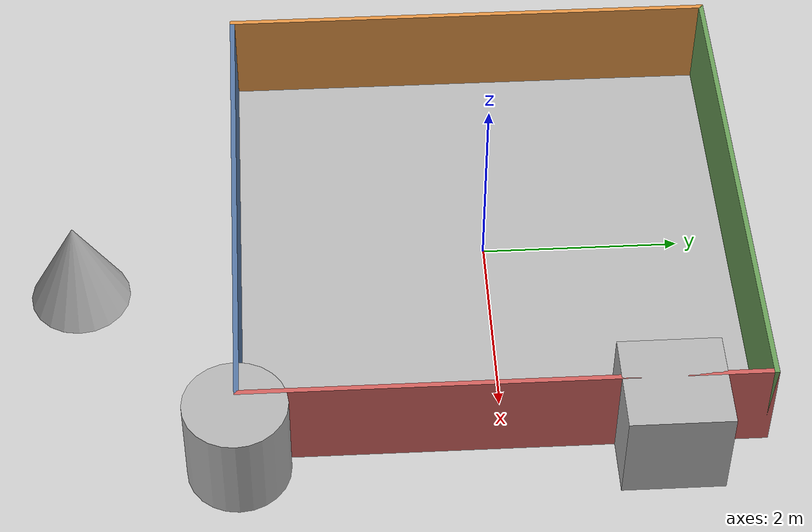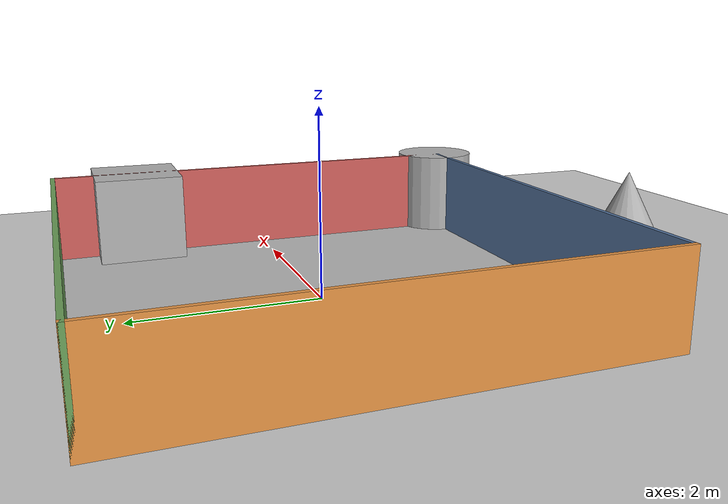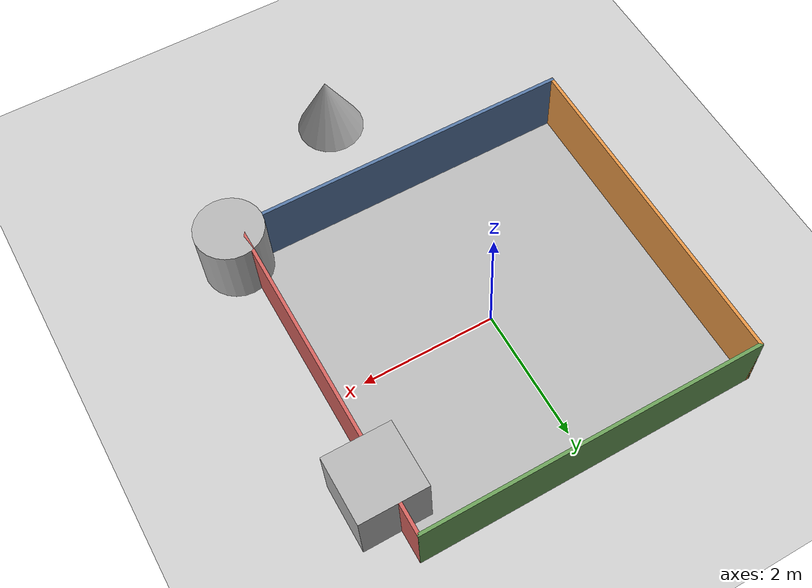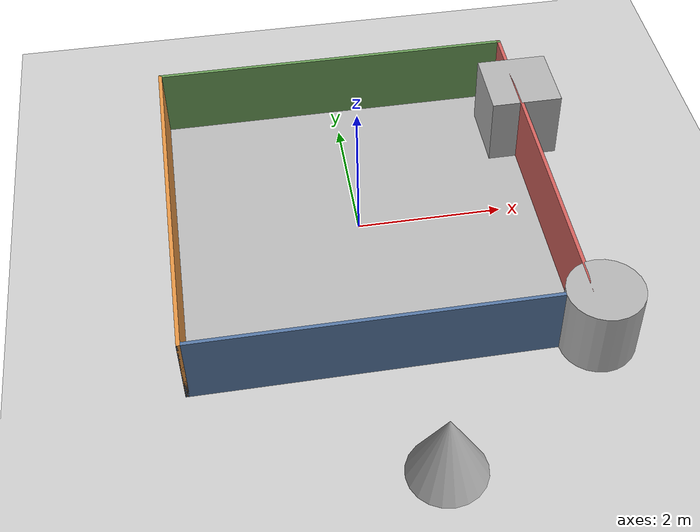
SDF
<sdf version='1.10'>
  <world name='empty'>
    <physics name='1ms' type='ignored'>
      <max_step_size>0.001</max_step_size>
      <real_time_factor>1</real_time_factor>
      <real_time_update_rate>1000</real_time_update_rate>
    </physics>
    <plugin name='gz::sim::systems::Physics' filename='gz-sim-physics-system'/>
    <plugin name='gz::sim::systems::UserCommands' filename='gz-sim-user-commands-system'/>
    <plugin name='gz::sim::systems::SceneBroadcaster' filename='gz-sim-scene-broadcaster-system'/>
    <plugin name='gz::sim::systems::Contact' filename='gz-sim-contact-system'/>
    <gravity>0 0 -9.8000000000000007</gravity>
    <magnetic_field>5.5644999999999998e-06 2.2875799999999999e-05 -4.2388400000000002e-05</magnetic_field>
    <atmosphere type='adiabatic'/>
    <scene>
      <ambient>0.400000006 0.400000006 0.400000006 1</ambient>
      <background>0.699999988 0.699999988 0.699999988 1</background>
      <shadows>true</shadows>
    </scene>
    <model name='ground_plane'>
      <static>true</static>
      <link name='link'>
        <collision name='collision'>
          <geometry>
            <plane>
              <normal>0 0 1</normal>
              <size>100 100</size>
            </plane>
          </geometry>
          <surface>
            <friction>
              <ode/>
            </friction>
            <bounce/>
            <contact/>
          </surface>
        </collision>
        <visual name='visual'>
          <geometry>
            <plane>
              <normal>0 0 1</normal>
              <size>100 100</size>
            </plane>
          </geometry>
          <material>
            <ambient>0.800000012 0.800000012 0.800000012 1</ambient>
            <diffuse>0.800000012 0.800000012 0.800000012 1</diffuse>
            <specular>0.800000012 0.800000012 0.800000012 1</specular>
          </material>
        </visual>
        <pose>0 0 0 0 0 0</pose>
        <inertial>
          <pose>0 0 0 0 0 0</pose>
          <mass>1</mass>
          <inertia>
            <ixx>1</ixx>
            <ixy>0</ixy>
            <ixz>0</ixz>
            <iyy>1</iyy>
            <iyz>0</iyz>
            <izz>1</izz>
          </inertia>
        </inertial>
        <enable_wind>false</enable_wind>
      </link>
      <pose>0 0 0 0 0 0</pose>
      <self_collide>false</self_collide>
    </model>
    <model name='box'>
      <pose>2.6013563978712391 1.5662996425882101 0.5 0 0 0</pose>
      <link name='box_link'>
        <inertial>
          <inertia>
            <ixx>0.16666</ixx>
            <ixy>0</ixy>
            <ixz>0</ixz>
            <iyy>0.16666</iyy>
            <iyz>0</iyz>
            <izz>0.16666</izz>
          </inertia>
          <mass>1</mass>
          <pose>0 0 0 0 0 0</pose>
        </inertial>
        <collision name='box_collision'>
          <geometry>
            <box>
              <size>1 1 1</size>
            </box>
          </geometry>
          <surface>
            <friction>
              <ode/>
            </friction>
            <bounce/>
            <contact/>
          </surface>
        </collision>
        <visual name='box_visual'>
          <geometry>
            <box>
              <size>1 1 1</size>
            </box>
          </geometry>
          <material>
            <ambient>0.300000012 0.300000012 0.300000012 1</ambient>
            <diffuse>0.699999988 0.699999988 0.699999988 1</diffuse>
            <specular>1 1 1 1</specular>
          </material>
        </visual>
        <pose>0 0 0 0 0 0</pose>
        <enable_wind>false</enable_wind>
      </link>
      <static>false</static>
      <self_collide>false</self_collide>
    </model>
    <model name='cylinder'>
      <pose>2.6667647724593095 -2.5392168535956814 0.5 0 0 0</pose>
      <link name='cylinder_link'>
        <inertial>
          <inertia>
            <ixx>0.14580000000000001</ixx>
            <ixy>0</ixy>
            <ixz>0</ixz>
            <iyy>0.14580000000000001</iyy>
            <iyz>0</iyz>
            <izz>0.125</izz>
          </inertia>
          <mass>1</mass>
          <pose>0 0 0 0 0 0</pose>
        </inertial>
        <collision name='cylinder_collision'>
          <geometry>
            <cylinder>
              <radius>0.5</radius>
              <length>1</length>
            </cylinder>
          </geometry>
          <surface>
            <friction>
              <ode/>
            </friction>
            <bounce/>
            <contact/>
          </surface>
        </collision>
        <visual name='cylinder_visual'>
          <geometry>
            <cylinder>
              <radius>0.5</radius>
              <length>1</length>
            </cylinder>
          </geometry>
          <material>
            <ambient>0.300000012 0.300000012 0.300000012 1</ambient>
            <diffuse>0.699999988 0.699999988 0.699999988 1</diffuse>
            <specular>1 1 1 1</specular>
          </material>
        </visual>
        <pose>0 0 0 0 0 0</pose>
        <enable_wind>false</enable_wind>
      </link>
      <static>false</static>
      <self_collide>false</self_collide>
    </model>
    <model name='cone'>
      <pose>0.39498563894332683 -4.1261636389859646 0.5 0 0 0</pose>
      <link name='cone_link'>
        <inertial>
          <inertia>
            <ixx>0.074999999999999997</ixx>
            <ixy>0</ixy>
            <ixz>0</ixz>
            <iyy>0.074999999999999997</iyy>
            <iyz>0</iyz>
            <izz>0.074999999999999997</izz>
          </inertia>
          <mass>1</mass>
          <pose>0 0 0 0 0 0</pose>
        </inertial>
        <collision name='cone_collision'>
          <geometry>
            <cone>
              <radius>0.5</radius>
              <length>1</length>
            </cone>
          </geometry>
          <surface>
            <friction>
              <ode/>
            </friction>
            <bounce/>
            <contact/>
          </surface>
        </collision>
        <visual name='cone_visual'>
          <geometry>
            <cone>
              <radius>0.5</radius>
              <length>1</length>
            </cone>
          </geometry>
          <material>
            <ambient>0.300000012 0.300000012 0.300000012 1</ambient>
            <diffuse>0.699999988 0.699999988 0.699999988 1</diffuse>
            <specular>1 1 1 1</specular>
          </material>
        </visual>
        <pose>0 0 0 0 0 0</pose>
        <enable_wind>false</enable_wind>
      </link>
      <static>false</static>
      <self_collide>false</self_collide>
    </model>
    <light name='sun' type='directional'>
      <pose>0 0 10 0 0 0</pose>
      <cast_shadows>true</cast_shadows>
      <intensity>1</intensity>
      <direction>-0.5 0.10000000000000001 -0.90000000000000002</direction>
      <diffuse>0.800000012 0.800000012 0.800000012 1</diffuse>
      <specular>0.200000003 0.200000003 0.200000003 1</specular>
      <attenuation>
        <range>1000</range>
        <linear>0.01</linear>
        <constant>0.90000000000000002</constant>
        <quadratic>0.001</quadratic>
      </attenuation>
      <spot>
        <inner_angle>0</inner_angle>
        <outer_angle>0</outer_angle>
        <falloff>0</falloff>
      </spot>
    </light>
    <include>
      <uri>model://LineTrack</uri>
      <pose>0 0 0 0 0 0</pose>
    </include>
  </world>
</sdf>

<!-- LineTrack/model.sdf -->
<sdf version="1.6">
  <model name='LineTrack'>
    <static>true</static>
    <link name="track">
      <pose>0 0 0 0 0 0</pose>
        <visual name="visual">
          <geometry>
            <mesh><uri>model://LineTrack/meshes/track.obj</uri></mesh>
          </geometry>
        </visual>
        <collision name='collision'>
          <geometry>
            <plane>
              <normal>0 0 1</normal>
              <size>100 100</size>
            </plane>
          </geometry>
        </collision>
    </link>

    <link name='wall_xp'>
      <pose>2.525 0 0.5 0 0 0</pose><!--pose relative to the world-->
      <visual name='visual'>
        <geometry>
          <box>
            <size>0.05 5.1 1.0</size>
          </box>
        </geometry>
        <!--let's add color to our link-->
        <material>
          <ambient> 0.819 0.38 0.364 1</ambient>
          <diffuse> 0.819 0.38 0.364 1</diffuse>
          <specular>0.819 0.38 0.364 1</specular>
        </material>
      </visual>
      <collision name='collision'> <!--todo: describe why we need the collision-->
        <geometry>
          <box>
            <size>0.05 5.1 1.0</size>
          </box>
        </geometry>
      </collision>
    </link>

    <link name='wall_xm'>
      <pose>-2.525 0 0.5 0 0 0</pose><!--pose relative to the world-->
      <visual name='visual'>
        <geometry>
          <box>
            <size>0.05 5.1 1.0</size>
          </box>
        </geometry>
        <!--let's add color to our link-->
        <material>
          <ambient> 0.894 0.580 0.267 1</ambient>
          <diffuse> 0.894 0.580 0.267 1</diffuse>
          <specular>0.894 0.580 0.267 1</specular>
        </material>
      </visual>
      <collision name='collision'> <!--todo: describe why we need the collision-->
        <geometry>
          <box>
            <size>0.05 5.1 1.0</size>
          </box>
        </geometry>
      </collision>
    </link>

    <link name='wall_yp'>
      <pose>0 2.525 0.5 0 0 1.57079632679</pose><!--pose relative to the world-->
      <visual name='visual'>
        <geometry>
          <box>
            <size>0.05 5.1 1.0</size>
          </box>
        </geometry>
        <!--let's add color to our link-->
        <material>
          <ambient> 0.416 0.623 0.345 1</ambient>
          <diffuse> 0.416 0.623 0.345 1</diffuse>
          <specular>0.416 0.623 0.345 1</specular>
        </material>
      </visual>
      <collision name='collision'> <!--todo: describe why we need the collision-->
        <geometry>
          <box>
            <size>0.05 5.1 1.0</size>
          </box>
        </geometry>
      </collision>
    </link>

    <link name='wall_ym'>
      <pose>0 -2.525 0.5 0 0 1.57079632679</pose><!--pose relative to the world-->
      <visual name='visual'>
        <geometry>
          <box>
            <size>0.05 5.1 1.0</size>
          </box>
        </geometry>
        <!--let's add color to our link-->
        <material>
          <ambient> 0.341 0.470 0.643 1</ambient>
          <diffuse> 0.341 0.470 0.643 1</diffuse>
          <specular>0.341 0.470 0.643 1</specular>
        </material>
      </visual>
      <collision name='collision'> <!--todo: describe why we need the collision-->
        <geometry>
          <box>
            <size>0.05 5.1 1.0</size>
          </box>
        </geometry>
      </collision>
    </link>
  </model>
</sdf>
